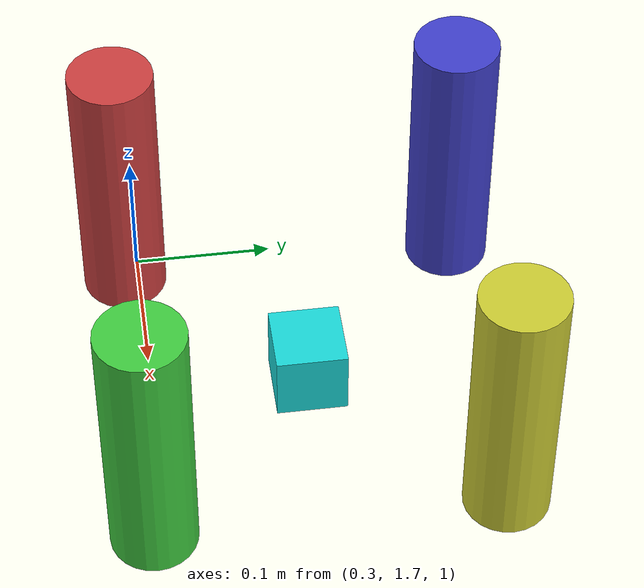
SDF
<sdf version="1.9">
 <world name="restricted_pillars_env">
  <physics name="1ms" type="ignored">
   <max_step_size>0.001</max_step_size>
   <real_time_factor>1.0</real_time_factor>
   <real_time_update_rate>1000</real_time_update_rate>
  </physics>
  <plugin name="gz::sim::systems::Physics" filename="gz-sim-physics-system"/>
  <plugin name="gz::sim::systems::UserCommands" filename="gz-sim-user-commands-system"/>
  <plugin name="gz::sim::systems::Sensors" filename="gz-sim-sensors-system">
   <render_engine>ogre2</render_engine>
  </plugin>
  <plugin name="gz::sim::systems::SceneBroadcaster" filename="gz-sim-scene-broadcaster-system"/>
  <scene>
   <ambient>0.45 0.45 0.45 1</ambient>
   <background>0.74 0.72 0.70 1</background>
   <shadows>true</shadows>
  </scene>
  <gravity>0 0 -9.8</gravity>
  <include><uri>model://ground_plane</uri></include>
  <include><uri>model://sun</uri></include>
  <model name="pillar_1">
   <static>true</static>
   <pose>0.33 1.69 1.115 0 0 0</pose>
   <link name="link">
    <collision name="collision">
     <geometry><cylinder><radius>0.03</radius><length>0.20</length></cylinder></geometry>
    </collision>
    <visual name="visual">
     <geometry><cylinder><radius>0.03</radius><length>0.20</length></cylinder></geometry>
     <material><ambient>0.80 0.25 0.25 1</ambient><diffuse>0.80 0.25 0.25 1</diffuse></material>
    </visual>
   </link>
  </model>
  <model name="pillar_2">
   <static>true</static>
   <pose>0.57 1.69 1.115 0 0 0</pose>
   <link name="link">
    <collision name="collision">
     <geometry><cylinder><radius>0.03</radius><length>0.20</length></cylinder></geometry>
    </collision>
    <visual name="visual">
     <geometry><cylinder><radius>0.03</radius><length>0.20</length></cylinder></geometry>
     <material><ambient>0.25 0.80 0.25 1</ambient><diffuse>0.25 0.80 0.25 1</diffuse></material>
    </visual>
   </link>
  </model>
  <model name="pillar_3">
   <static>true</static>
   <pose>0.33 1.93 1.115 0 0 0</pose>
   <link name="link">
    <collision name="collision">
     <geometry><cylinder><radius>0.03</radius><length>0.20</length></cylinder></geometry>
    </collision>
    <visual name="visual">
     <geometry><cylinder><radius>0.03</radius><length>0.20</length></cylinder></geometry>
     <material><ambient>0.25 0.25 0.80 1</ambient><diffuse>0.25 0.25 0.80 1</diffuse></material>
    </visual>
   </link>
  </model>
  <model name="pillar_4">
   <static>true</static>
   <pose>0.57 1.93 1.115 0 0 0</pose>
   <link name="link">
    <collision name="collision">
     <geometry><cylinder><radius>0.03</radius><length>0.20</length></cylinder></geometry>
    </collision>
    <visual name="visual">
     <geometry><cylinder><radius>0.03</radius><length>0.20</length></cylinder></geometry>
     <material><ambient>0.80 0.80 0.20 1</ambient><diffuse>0.80 0.80 0.20 1</diffuse></material>
    </visual>
   </link>
  </model>
  <model name="pillar_target_cube">
   <static>false</static>
   <pose>0.45 1.81 1.040 0 0 0</pose>
   <link name="link">
    <inertial>
     <mass>0.12</mass>
     <inertia>
      <ixx>0.00005</ixx>
      <ixy>0.0</ixy>
      <ixz>0.0</ixz>
      <iyy>0.00005</iyy>
      <iyz>0.0</iyz>
      <izz>0.00005</izz>
     </inertia>
    </inertial>
    <collision name="collision"><geometry><box><size>0.05 0.05 0.05</size></box></geometry></collision>
    <visual name="visual">
     <geometry><box><size>0.05 0.05 0.05</size></box></geometry>
     <material><ambient>0.10 0.85 0.85 1</ambient><diffuse>0.10 0.85 0.85 1</diffuse></material>
    </visual>
   </link>
  </model>
 </world>
</sdf>
